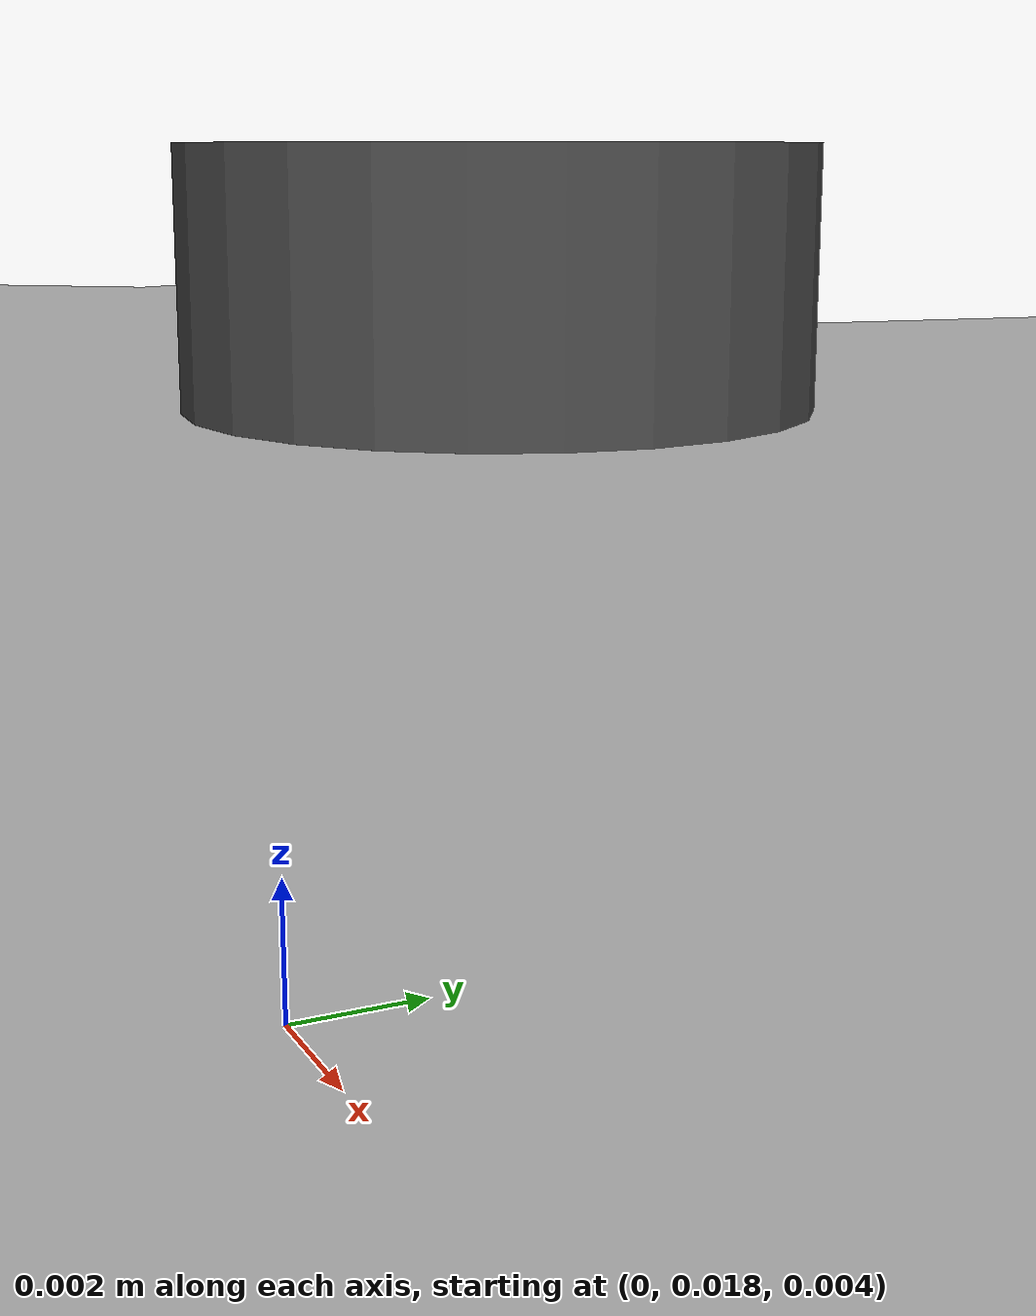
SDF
<?xml version="1.0" ?>
<sdf version="1.6">
  <model name="gear_part">
    <link name="link">
      <inertial>
        <pose>0 0 0.005875 0 0 0</pose>
        <mass>1.5</mass>
        <inertia>
          <ixx>0.00019820251</ixx>
          <ixy>0</ixy>
          <ixz>0</ixz>
          <iyy>0.00019820251</iyy>
          <iyz>0</iyz>
          <izz>0.00038440503</izz>
        </inertia>
      </inertial>

      <collision name="collision">
        <max_contacts>10</max_contacts>
        <pose>0 0 0.005875 0 0 0</pose>
        <geometry>
          <cylinder>
            <length>0.012</length>
            <radius>0.0392125</radius>
          </cylinder>
        </geometry>
        <surface>
          <contact>
            <ode>
              <max_vel>0.0</max_vel>
              <min_depth>0.001</min_depth>
            </ode>
          </contact>
          <friction>
            <ode>
              <mu>1</mu>
              <mu2>1</mu2>
              <fdir1>0 0 0</fdir1>
              <slip1>0</slip1>
              <slip2>0</slip2>
            </ode>
            <torsional>
              <coefficient>1</coefficient>
              <patch_radius>0</patch_radius>
              <surface_radius>0</surface_radius>
              <use_patch_radius>1</use_patch_radius>
              <ode>
                <slip>0</slip>
              </ode>
            </torsional>
          </friction>
        </surface>
      </collision>

      <visual name="visual">
         <geometry>
           <mesh>
             <uri>model://gear_part/meshes/gear.dae</uri>
             <scale>0.25 0.25 0.25</scale>
           </mesh>
         </geometry>
        <material>
          <script>
            <uri>model://arm_part/materials/scripts</uri>
            <uri>model://arm_part/materials/textures</uri>
            <name>ArmPart/Diffuse</name>
          </script>
        </material>
       </visual>
      <collision name="collision_asymmetric_mark">
        <pose>0 0.021 0.009 0 0 0</pose>
        <max_contacts>10</max_contacts>
         <geometry>
          <cylinder>
            <length>0.012</length>
            <radius>0.00392125</radius>
          </cylinder>
         </geometry>
        <surface>
          <contact>
            <ode>
              <max_vel>0.0</max_vel>
              <min_depth>0.001</min_depth>
            </ode>
          </contact>
        </surface>
      </collision>

      <visual name="visual_asymmetric_mark">
        <pose>0 0.021 0.009 0 0 0</pose>
         <geometry>
          <cylinder>
            <length>0.012</length>
            <radius>0.00392125</radius>
          </cylinder>
         </geometry>
        <material>
          <lighting>1</lighting>
          <script>
            <uri>file://media/materials/scripts/gazebo.material</uri>
            <name>Gazebo/DarkGrey</name>
          </script>
          <emissive>0 0 0 1</emissive>
        </material>
      </visual>
    </link>

  </model>
</sdf>
